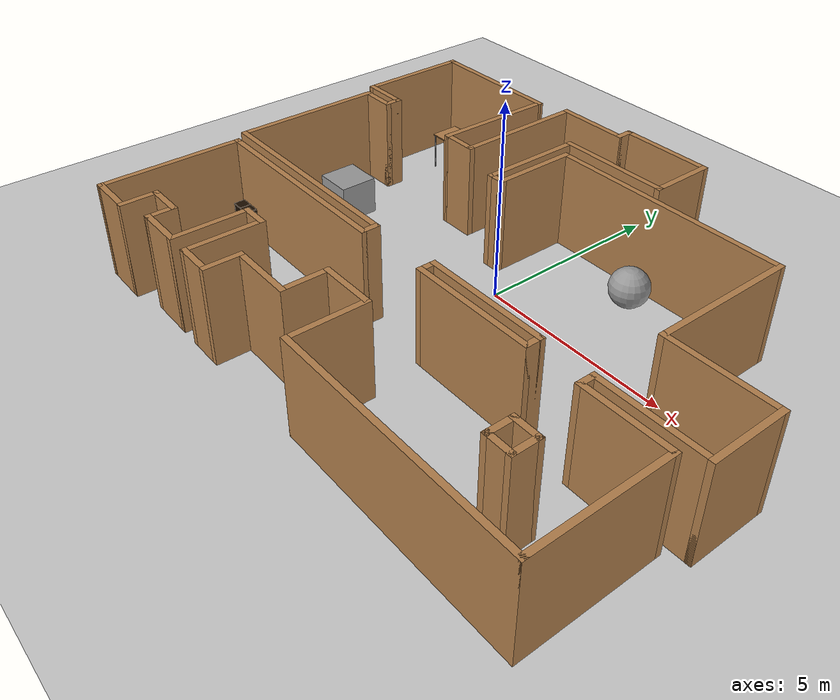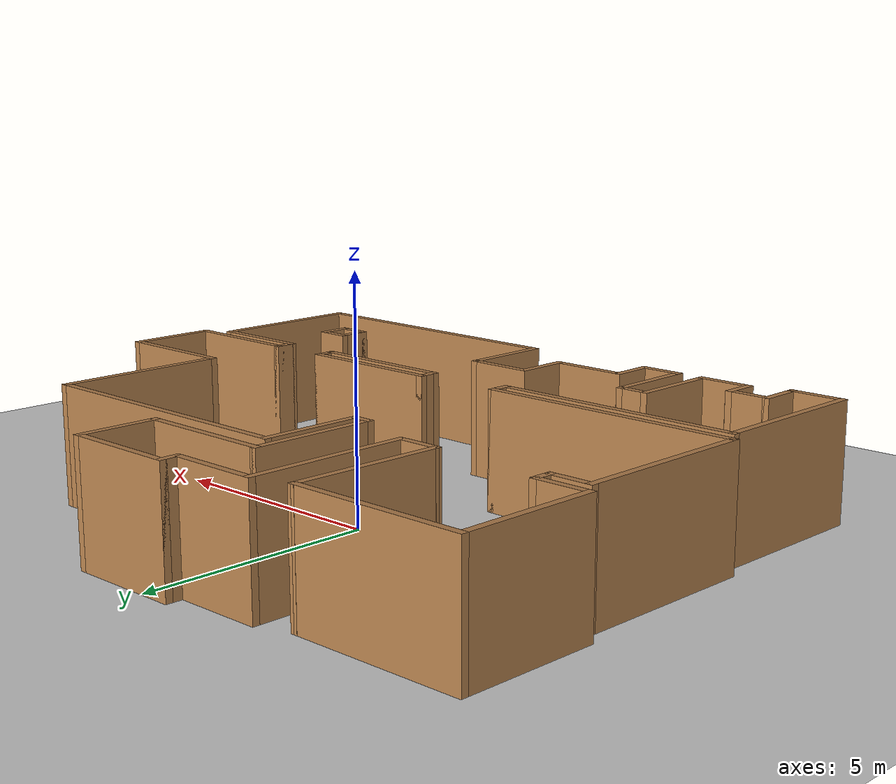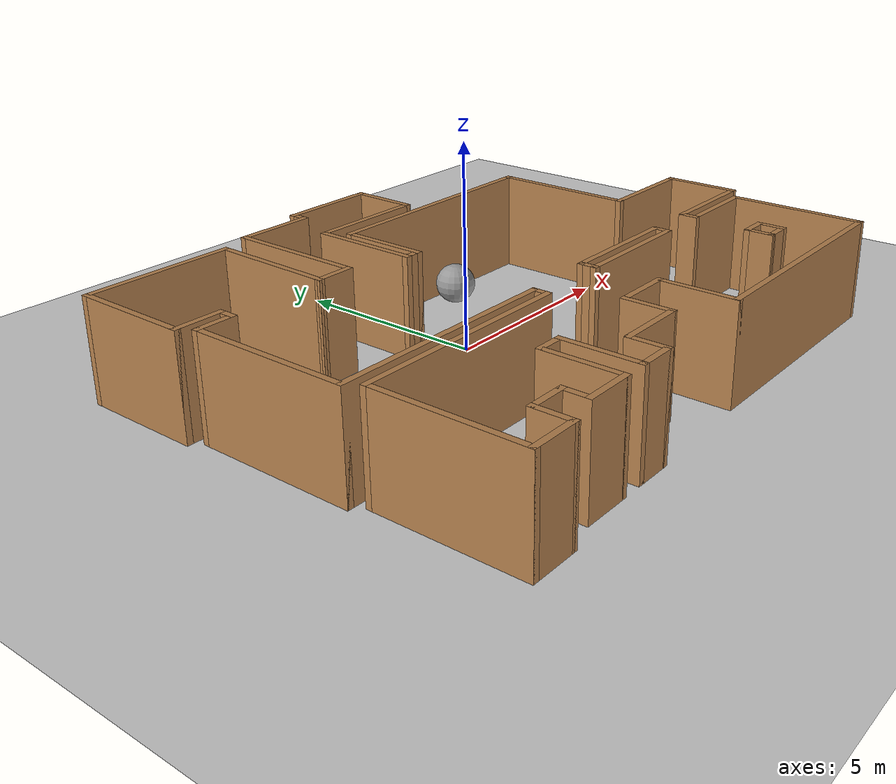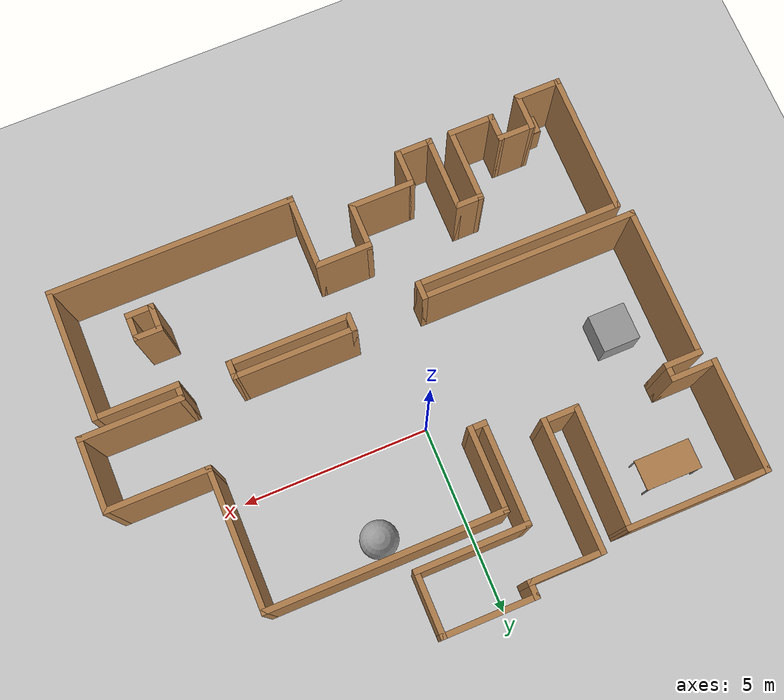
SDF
<sdf version="1.6">
 <world name="default">
  <light name="sun" type="directional">
   <pose>0 0 10 0 -0 0</pose>
   <diffuse>0.8 0.8 0.8 1</diffuse>
   <specular>0.2 0.2 0.2 1</specular>
   <attenuation>
    <range>1000</range>
    <constant>0.9</constant>
    <linear>0.01</linear>
    <quadratic>0.001</quadratic>
   </attenuation>
   <direction>-0.5 0.1 -0.9</direction>
  </light>
  <model name="ground_plane">
   <static>1</static>
   <link name="link">
    <collision name="collision">
     <geometry><plane><normal>0 0 1</normal><size>100 100</size></plane></geometry>
     <surface>
      <contact><collide_bitmask>65535</collide_bitmask></contact>
      <friction><ode><mu>100</mu><mu2>50</mu2></ode></friction>
     </surface>
    </collision>
    <visual name="visual">
     <cast_shadows>0</cast_shadows>
     <geometry><plane><normal>0 0 1</normal><size>100 100</size></plane></geometry>
     <material>
      <script><uri>file://media/materials/scripts/gazebo.material</uri><name>Gazebo/Grey</name></script>
     </material>
    </visual>
   </link>
  </model>
  <gravity>0 0 -9.8</gravity>
  <magnetic_field>6e-06 2.3e-05 -4.2e-05</magnetic_field>
  <atmosphere type="adiabatic"/>
  <physics name="default_physics" default="0" type="ode">
   <max_step_size>0.001</max_step_size>
   <real_time_factor>1</real_time_factor>
   <real_time_update_rate>1000</real_time_update_rate>
  </physics>
  <scene><ambient>0.4 0.4 0.4 1</ambient><background>0.7 0.7 0.7 1</background><shadows>1</shadows></scene>
  <audio><device>default</device></audio>
  <spherical_coordinates>
   <surface_model>EARTH_WGS84</surface_model>
   <latitude_deg>0</latitude_deg>
   <longitude_deg>0</longitude_deg>
   <elevation>0</elevation>
   <heading_deg>0</heading_deg>
  </spherical_coordinates>
  <model name="map_63">
   <pose>0.515719 -0.835824 0 0 -0 0</pose>
   <link name="Wall_0">
    <collision name="Wall_0_Collision">
     <geometry><box><size>3.75 0.15 2.5</size></box></geometry>
     <pose>0 0 1.25 0 -0 0</pose>
    </collision>
    <visual name="Wall_0_Visual">
     <pose>0 0 1.25 0 -0 0</pose>
     <geometry><box><size>3.75 0.15 2.5</size></box></geometry>
     <material>
      <script><uri>file://media/materials/scripts/gazebo.material</uri><name>Gazebo/Wood</name></script>
      <ambient>1 1 1 1</ambient>
     </material>
     <meta><layer>0</layer></meta>
    </visual>
    <pose>-5.6 5.2 0 0 -0 3.14159</pose>
   </link>
   <link name="Wall_1">
    <collision name="Wall_1_Collision">
     <geometry><box><size>3 0.15 2.5</size></box></geometry>
     <pose>0 0 1.25 0 -0 0</pose>
    </collision>
    <visual name="Wall_1_Visual">
     <pose>0 0 1.25 0 -0 0</pose>
     <geometry><box><size>3 0.15 2.5</size></box></geometry>
     <material>
      <script><uri>file://media/materials/scripts/gazebo.material</uri><name>Gazebo/Wood</name></script>
      <ambient>1 1 1 1</ambient>
     </material>
     <meta><layer>0</layer></meta>
    </visual>
    <pose>-7.4 3.775 0 0 -0 -1.5708</pose>
   </link>
   <link name="Wall_10">
    <collision name="Wall_10_Collision">
     <geometry><box><size>1.25 0.15 2.5</size></box></geometry>
     <pose>0 0 1.25 0 -0 0</pose>
    </collision>
    <visual name="Wall_10_Visual">
     <pose>0 0 1.25 0 -0 0</pose>
     <geometry><box><size>1.25 0.15 2.5</size></box></geometry>
     <material>
      <script><uri>file://media/materials/scripts/gazebo.material</uri><name>Gazebo/Wood</name></script>
      <ambient>1 1 1 1</ambient>
     </material>
     <meta><layer>0</layer></meta>
    </visual>
    <pose>-6.35 -5.8 0 0 -0 0</pose>
   </link>
   <link name="Wall_11">
    <collision name="Wall_11_Collision">
     <geometry><box><size>1 0.15 2.5</size></box></geometry>
     <pose>0 0 1.25 0 -0 0</pose>
    </collision>
    <visual name="Wall_11_Visual">
     <pose>0 0 1.25 0 -0 0</pose>
     <geometry><box><size>1 0.15 2.5</size></box></geometry>
     <material>
      <script><uri>file://media/materials/scripts/gazebo.material</uri><name>Gazebo/Wood</name></script>
      <ambient>1 1 1 1</ambient>
     </material>
     <meta><layer>0</layer></meta>
    </visual>
    <pose>-5.8 -5.375 0 0 -0 1.5708</pose>
   </link>
   <link name="Wall_12">
    <collision name="Wall_12_Collision">
     <geometry><box><size>1 0.15 2.5</size></box></geometry>
     <pose>0 0 1.25 0 -0 0</pose>
    </collision>
    <visual name="Wall_12_Visual">
     <pose>0 0 1.25 0 -0 0</pose>
     <geometry><box><size>1 0.15 2.5</size></box></geometry>
     <material>
      <script><uri>file://media/materials/scripts/gazebo.material</uri><name>Gazebo/Wood</name></script>
      <ambient>1 1 1 1</ambient>
     </material>
     <meta><layer>0</layer></meta>
    </visual>
    <pose>-5.375 -4.95 0 0 -0 0</pose>
   </link>
   <link name="Wall_13">
    <collision name="Wall_13_Collision">
     <geometry><box><size>0.75 0.15 2.5</size></box></geometry>
     <pose>0 0 1.25 0 -0 0</pose>
    </collision>
    <visual name="Wall_13_Visual">
     <pose>0 0 1.25 0 -0 0</pose>
     <geometry><box><size>0.75 0.15 2.5</size></box></geometry>
     <material>
      <script><uri>file://media/materials/scripts/gazebo.material</uri><name>Gazebo/Wood</name></script>
      <ambient>1 1 1 1</ambient>
     </material>
     <meta><layer>0</layer></meta>
    </visual>
    <pose>-4.95 -5.25 0 0 -0 -1.5708</pose>
   </link>
   <link name="Wall_14">
    <collision name="Wall_14_Collision">
     <geometry><box><size>1.25 0.15 2.5</size></box></geometry>
     <pose>0 0 1.25 0 -0 0</pose>
    </collision>
    <visual name="Wall_14_Visual">
     <pose>0 0 1.25 0 -0 0</pose>
     <geometry><box><size>1.25 0.15 2.5</size></box></geometry>
     <material>
      <script><uri>file://media/materials/scripts/gazebo.material</uri><name>Gazebo/Wood</name></script>
      <ambient>1 1 1 1</ambient>
     </material>
     <meta><layer>0</layer></meta>
    </visual>
    <pose>-4.4 -5.55 0 0 -0 0</pose>
   </link>
   <link name="Wall_15">
    <collision name="Wall_15_Collision">
     <geometry><box><size>2 0.15 2.5</size></box></geometry>
     <pose>0 0 1.25 0 -0 0</pose>
    </collision>
    <visual name="Wall_15_Visual">
     <pose>0 0 1.25 0 -0 0</pose>
     <geometry><box><size>2 0.15 2.5</size></box></geometry>
     <material>
      <script><uri>file://media/materials/scripts/gazebo.material</uri><name>Gazebo/Wood</name></script>
      <ambient>1 1 1 1</ambient>
     </material>
     <meta><layer>0</layer></meta>
    </visual>
    <pose>-3.85 -4.625 0 0 -0 1.5708</pose>
   </link>
   <link name="Wall_16">
    <collision name="Wall_16_Collision">
     <geometry><box><size>0.75 0.15 2.5</size></box></geometry>
     <pose>0 0 1.25 0 -0 0</pose>
    </collision>
    <visual name="Wall_16_Visual">
     <pose>0 0 1.25 0 -0 0</pose>
     <geometry><box><size>0.75 0.15 2.5</size></box></geometry>
     <material>
      <script><uri>file://media/materials/scripts/gazebo.material</uri><name>Gazebo/Wood</name></script>
      <ambient>1 1 1 1</ambient>
     </material>
     <meta><layer>0</layer></meta>
    </visual>
    <pose>-3.55 -3.7 0 0 -0 0</pose>
   </link>
   <link name="Wall_17">
    <collision name="Wall_17_Collision">
     <geometry><box><size>2 0.15 2.5</size></box></geometry>
     <pose>0 0 1.25 0 -0 0</pose>
    </collision>
    <visual name="Wall_17_Visual">
     <pose>0 0 1.25 0 -0 0</pose>
     <geometry><box><size>2 0.15 2.5</size></box></geometry>
     <material>
      <script><uri>file://media/materials/scripts/gazebo.material</uri><name>Gazebo/Wood</name></script>
      <ambient>1 1 1 1</ambient>
     </material>
     <meta><layer>0</layer></meta>
    </visual>
    <pose>-3.25 -4.625 0 0 -0 -1.5708</pose>
   </link>
   <link name="Wall_18">
    <collision name="Wall_18_Collision">
     <geometry><box><size>1 0.15 2.5</size></box></geometry>
     <pose>0 0 1.25 0 -0 0</pose>
    </collision>
    <visual name="Wall_18_Visual">
     <pose>0 0 1.25 0 -0 0</pose>
     <geometry><box><size>1 0.15 2.5</size></box></geometry>
     <material>
      <script><uri>file://media/materials/scripts/gazebo.material</uri><name>Gazebo/Wood</name></script>
      <ambient>1 1 1 1</ambient>
     </material>
     <meta><layer>0</layer></meta>
    </visual>
    <pose>-2.825 -5.55 0 0 -0 0</pose>
   </link>
   <link name="Wall_19">
    <collision name="Wall_19_Collision">
     <geometry><box><size>1 0.15 2.5</size></box></geometry>
     <pose>0 0 1.25 0 -0 0</pose>
    </collision>
    <visual name="Wall_19_Visual">
     <pose>0 0 1.25 0 -0 0</pose>
     <geometry><box><size>1 0.15 2.5</size></box></geometry>
     <material>
      <script><uri>file://media/materials/scripts/gazebo.material</uri><name>Gazebo/Wood</name></script>
      <ambient>1 1 1 1</ambient>
     </material>
     <meta><layer>0</layer></meta>
    </visual>
    <pose>-2.4 -5.125 0 0 -0 1.5708</pose>
   </link>
   <link name="Wall_2">
    <collision name="Wall_2_Collision">
     <geometry><box><size>1.25 0.15 2.5</size></box></geometry>
     <pose>0 0 1.25 0 -0 0</pose>
    </collision>
    <visual name="Wall_2_Visual">
     <pose>0 0 1.25 0 -0 0</pose>
     <geometry><box><size>1.25 0.15 2.5</size></box></geometry>
     <material>
      <script><uri>file://media/materials/scripts/gazebo.material</uri><name>Gazebo/Wood</name></script>
      <ambient>1 1 1 1</ambient>
     </material>
     <meta><layer>0</layer></meta>
    </visual>
    <pose>-6.85 2.35 0 0 -0 0</pose>
   </link>
   <link name="Wall_20">
    <collision name="Wall_20_Collision">
     <geometry><box><size>1.75 0.15 2.5</size></box></geometry>
     <pose>0 0 1.25 0 -0 0</pose>
    </collision>
    <visual name="Wall_20_Visual">
     <pose>0 0 1.25 0 -0 0</pose>
     <geometry><box><size>1.75 0.15 2.5</size></box></geometry>
     <material>
      <script><uri>file://media/materials/scripts/gazebo.material</uri><name>Gazebo/Wood</name></script>
      <ambient>1 1 1 1</ambient>
     </material>
     <meta><layer>0</layer></meta>
    </visual>
    <pose>-1.6 -4.7 0 0 -0 0</pose>
   </link>
   <link name="Wall_21">
    <collision name="Wall_21_Collision">
     <geometry><box><size>1.25 0.15 2.5</size></box></geometry>
     <pose>0 0 1.25 0 -0 0</pose>
    </collision>
    <visual name="Wall_21_Visual">
     <pose>0 0 1.25 0 -0 0</pose>
     <geometry><box><size>1.25 0.15 2.5</size></box></geometry>
     <material>
      <script><uri>file://media/materials/scripts/gazebo.material</uri><name>Gazebo/Wood</name></script>
      <ambient>1 1 1 1</ambient>
     </material>
     <meta><layer>0</layer></meta>
    </visual>
    <pose>-0.8 -4.15 0 0 -0 1.5708</pose>
   </link>
   <link name="Wall_22">
    <collision name="Wall_22_Collision">
     <geometry><box><size>1.5 0.15 2.5</size></box></geometry>
     <pose>0 0 1.25 0 -0 0</pose>
    </collision>
    <visual name="Wall_22_Visual">
     <pose>0 0 1.25 0 -0 0</pose>
     <geometry><box><size>1.5 0.15 2.5</size></box></geometry>
     <material>
      <script><uri>file://media/materials/scripts/gazebo.material</uri><name>Gazebo/Wood</name></script>
      <ambient>1 1 1 1</ambient>
     </material>
     <meta><layer>0</layer></meta>
    </visual>
    <pose>-0.125 -3.6 0 0 -0 0</pose>
   </link>
   <link name="Wall_23">
    <collision name="Wall_23_Collision">
     <geometry><box><size>2 0.15 2.5</size></box></geometry>
     <pose>0 0 1.25 0 -0 0</pose>
    </collision>
    <visual name="Wall_23_Visual">
     <pose>0 0 1.25 0 -0 0</pose>
     <geometry><box><size>2 0.15 2.5</size></box></geometry>
     <material>
      <script><uri>file://media/materials/scripts/gazebo.material</uri><name>Gazebo/Wood</name></script>
      <ambient>1 1 1 1</ambient>
     </material>
     <meta><layer>0</layer></meta>
    </visual>
    <pose>0.55 -4.525 0 0 -0 -1.5708</pose>
   </link>
   <link name="Wall_24">
    <collision name="Wall_24_Collision">
     <geometry><box><size>6.5 0.15 2.5</size></box></geometry>
     <pose>0 0 1.25 0 -0 0</pose>
    </collision>
    <visual name="Wall_24_Visual">
     <pose>0 0 1.25 0 -0 0</pose>
     <geometry><box><size>6.5 0.15 2.5</size></box></geometry>
     <material>
      <script><uri>file://media/materials/scripts/gazebo.material</uri><name>Gazebo/Wood</name></script>
      <ambient>1 1 1 1</ambient>
     </material>
     <meta><layer>0</layer></meta>
    </visual>
    <pose>3.725 -5.45 0 0 -0 0</pose>
   </link>
   <link name="Wall_25">
    <collision name="Wall_25_Collision">
     <geometry><box><size>3.5 0.15 2.5</size></box></geometry>
     <pose>0 0 1.25 0 -0 0</pose>
    </collision>
    <visual name="Wall_25_Visual">
     <pose>0 0 1.25 0 -0 0</pose>
     <geometry><box><size>3.5 0.15 2.5</size></box></geometry>
     <material>
      <script><uri>file://media/materials/scripts/gazebo.material</uri><name>Gazebo/Wood</name></script>
      <ambient>1 1 1 1</ambient>
     </material>
     <meta><layer>0</layer></meta>
    </visual>
    <pose>6.9 -3.775 0 0 -0 1.5708</pose>
   </link>
   <link name="Wall_26">
    <collision name="Wall_26_Collision">
     <geometry><box><size>2.25 0.15 2.5</size></box></geometry>
     <pose>0 0 1.25 0 -0 0</pose>
    </collision>
    <visual name="Wall_26_Visual">
     <pose>0 0 1.25 0 -0 0</pose>
     <geometry><box><size>2.25 0.15 2.5</size></box></geometry>
     <material>
      <script><uri>file://media/materials/scripts/gazebo.material</uri><name>Gazebo/Wood</name></script>
      <ambient>1 1 1 1</ambient>
     </material>
     <meta><layer>0</layer></meta>
    </visual>
    <pose>5.85 -2.1 0 0 -0 3.14159</pose>
   </link>
   <link name="Wall_27">
    <collision name="Wall_27_Collision">
     <geometry><box><size>0.5 0.15 2.5</size></box></geometry>
     <pose>0 0 1.25 0 -0 0</pose>
    </collision>
    <visual name="Wall_27_Visual">
     <pose>0 0 1.25 0 -0 0</pose>
     <geometry><box><size>0.5 0.15 2.5</size></box></geometry>
     <material>
      <script><uri>file://media/materials/scripts/gazebo.material</uri><name>Gazebo/Wood</name></script>
      <ambient>1 1 1 1</ambient>
     </material>
     <meta><layer>0</layer></meta>
    </visual>
    <pose>4.8 -1.925 0 0 -0 1.5708</pose>
   </link>
   <link name="Wall_28">
    <collision name="Wall_28_Collision">
     <geometry><box><size>2.75 0.15 2.5</size></box></geometry>
     <pose>0 0 1.25 0 -0 0</pose>
    </collision>
    <visual name="Wall_28_Visual">
     <pose>0 0 1.25 0 -0 0</pose>
     <geometry><box><size>2.75 0.15 2.5</size></box></geometry>
     <material>
      <script><uri>file://media/materials/scripts/gazebo.material</uri><name>Gazebo/Wood</name></script>
      <ambient>1 1 1 1</ambient>
     </material>
     <meta><layer>0</layer></meta>
    </visual>
    <pose>6.1 -1.75 0 0 -0 0</pose>
   </link>
   <link name="Wall_29">
    <collision name="Wall_29_Collision">
     <geometry><box><size>2 0.15 2.5</size></box></geometry>
     <pose>0 0 1.25 0 -0 0</pose>
    </collision>
    <visual name="Wall_29_Visual">
     <pose>0 0 1.25 0 -0 0</pose>
     <geometry><box><size>2 0.15 2.5</size></box></geometry>
     <material>
      <script><uri>file://media/materials/scripts/gazebo.material</uri><name>Gazebo/Wood</name></script>
      <ambient>1 1 1 1</ambient>
     </material>
     <meta><layer>0</layer></meta>
    </visual>
    <pose>7.4 -0.825 0 0 -0 1.5708</pose>
   </link>
   <link name="Wall_3">
    <collision name="Wall_3_Collision">
     <geometry><box><size>0.5 0.15 2.5</size></box></geometry>
     <pose>0 0 1.25 0 -0 0</pose>
    </collision>
    <visual name="Wall_3_Visual">
     <pose>0 0 1.25 0 -0 0</pose>
     <geometry><box><size>0.5 0.15 2.5</size></box></geometry>
     <material>
      <script><uri>file://media/materials/scripts/gazebo.material</uri><name>Gazebo/Wood</name></script>
      <ambient>1 1 1 1</ambient>
     </material>
     <meta><layer>0</layer></meta>
    </visual>
    <pose>-6.3 2.175 0 0 -0 -1.5708</pose>
   </link>
   <link name="Wall_30">
    <collision name="Wall_30_Collision">
     <geometry><box><size>2.75 0.15 2.5</size></box></geometry>
     <pose>0 0 1.25 0 -0 0</pose>
    </collision>
    <visual name="Wall_30_Visual">
     <pose>0 0 1.25 0 -0 0</pose>
     <geometry><box><size>2.75 0.15 2.5</size></box></geometry>
     <material>
      <script><uri>file://media/materials/scripts/gazebo.material</uri><name>Gazebo/Wood</name></script>
      <ambient>1 1 1 1</ambient>
     </material>
     <meta><layer>0</layer></meta>
    </visual>
    <pose>6.1 0.1 0 0 -0 3.14159</pose>
   </link>
   <link name="Wall_31">
    <collision name="Wall_31_Collision">
     <geometry><box><size>3.75 0.15 2.5</size></box></geometry>
     <pose>0 0 1.25 0 -0 0</pose>
    </collision>
    <visual name="Wall_31_Visual">
     <pose>0 0 1.25 0 -0 0</pose>
     <geometry><box><size>3.75 0.15 2.5</size></box></geometry>
     <material>
      <script><uri>file://media/materials/scripts/gazebo.material</uri><name>Gazebo/Wood</name></script>
      <ambient>1 1 1 1</ambient>
     </material>
     <meta><layer>0</layer></meta>
    </visual>
    <pose>4.8 1.9 0 0 -0 1.5708</pose>
   </link>
   <link name="Wall_32">
    <collision name="Wall_32_Collision">
     <geometry><box><size>6.25 0.15 2.5</size></box></geometry>
     <pose>0 0 1.25 0 -0 0</pose>
    </collision>
    <visual name="Wall_32_Visual">
     <pose>0 0 1.25 0 -0 0</pose>
     <geometry><box><size>6.25 0.15 2.5</size></box></geometry>
     <material>
      <script><uri>file://media/materials/scripts/gazebo.material</uri><name>Gazebo/Wood</name></script>
      <ambient>1 1 1 1</ambient>
     </material>
     <meta><layer>0</layer></meta>
    </visual>
    <pose>1.75 3.7 0 0 -0 3.14159</pose>
   </link>
   <link name="Wall_33">
    <collision name="Wall_33_Collision">
     <geometry><box><size>2.25 0.15 2.5</size></box></geometry>
     <pose>0 0 1.25 0 -0 0</pose>
    </collision>
    <visual name="Wall_33_Visual">
     <pose>0 0 1.25 0 -0 0</pose>
     <geometry><box><size>2.25 0.15 2.5</size></box></geometry>
     <material>
      <script><uri>file://media/materials/scripts/gazebo.material</uri><name>Gazebo/Wood</name></script>
      <ambient>1 1 1 1</ambient>
     </material>
     <meta><layer>0</layer></meta>
    </visual>
    <pose>-1.3 2.65 0 0 -0 -1.5708</pose>
   </link>
   <link name="Wall_34">
    <collision name="Wall_34_Collision">
     <geometry><box><size>0.5 0.15 2.5</size></box></geometry>
     <pose>0 0 1.25 0 -0 0</pose>
    </collision>
    <visual name="Wall_34_Visual">
     <pose>0 0 1.25 0 -0 0</pose>
     <geometry><box><size>0.5 0.15 2.5</size></box></geometry>
     <material>
      <script><uri>file://media/materials/scripts/gazebo.material</uri><name>Gazebo/Wood</name></script>
      <ambient>1 1 1 1</ambient>
     </material>
     <meta><layer>0</layer></meta>
    </visual>
    <pose>-1.475 1.6 0 0 -0 3.14159</pose>
   </link>
   <link name="Wall_35">
    <collision name="Wall_35_Collision">
     <geometry><box><size>2.75 0.15 2.5</size></box></geometry>
     <pose>0 0 1.25 0 -0 0</pose>
    </collision>
    <visual name="Wall_35_Visual">
     <pose>0 0 1.25 0 -0 0</pose>
     <geometry><box><size>2.75 0.15 2.5</size></box></geometry>
     <material>
      <script><uri>file://media/materials/scripts/gazebo.material</uri><name>Gazebo/Wood</name></script>
      <ambient>1 1 1 1</ambient>
     </material>
     <meta><layer>0</layer></meta>
    </visual>
    <pose>-1.65 2.9 0 0 -0 1.5708</pose>
   </link>
   <link name="Wall_36">
    <collision name="Wall_36_Collision">
     <geometry><box><size>3 0.15 2.5</size></box></geometry>
     <pose>0 0 1.25 0 -0 0</pose>
    </collision>
    <visual name="Wall_36_Visual">
     <pose>0 0 1.25 0 -0 0</pose>
     <geometry><box><size>3 0.15 2.5</size></box></geometry>
     <material>
      <script><uri>file://media/materials/scripts/gazebo.material</uri><name>Gazebo/Wood</name></script>
      <ambient>1 1 1 1</ambient>
     </material>
     <meta><layer>0</layer></meta>
    </visual>
    <pose>-0.225 4.2 0 0 -0 0</pose>
   </link>
   <link name="Wall_37">
    <collision name="Wall_37_Collision">
     <geometry><box><size>1.75 0.15 2.5</size></box></geometry>
     <pose>0 0 1.25 0 -0 0</pose>
    </collision>
    <visual name="Wall_37_Visual">
     <pose>0 0 1.25 0 -0 0</pose>
     <geometry><box><size>1.75 0.15 2.5</size></box></geometry>
     <material>
      <script><uri>file://media/materials/scripts/gazebo.material</uri><name>Gazebo/Wood</name></script>
      <ambient>1 1 1 1</ambient>
     </material>
     <meta><layer>0</layer></meta>
    </visual>
    <pose>1.2 5 0 0 -0 1.5708</pose>
   </link>
   <link name="Wall_38">
    <collision name="Wall_38_Collision">
     <geometry><box><size>2.5 0.15 2.5</size></box></geometry>
     <pose>0 0 1.25 0 -0 0</pose>
    </collision>
    <visual name="Wall_38_Visual">
     <pose>0 0 1.25 0 -0 0</pose>
     <geometry><box><size>2.5 0.15 2.5</size></box></geometry>
     <material>
      <script><uri>file://media/materials/scripts/gazebo.material</uri><name>Gazebo/Wood</name></script>
      <ambient>1 1 1 1</ambient>
     </material>
     <meta><layer>0</layer></meta>
    </visual>
    <pose>0.025 5.8 0 0 -0 3.14159</pose>
   </link>
   <link name="Wall_39">
    <collision name="Wall_39_Collision">
     <geometry><box><size>0.5 0.15 2.5</size></box></geometry>
     <pose>0 0 1.25 0 -0 0</pose>
    </collision>
    <visual name="Wall_39_Visual">
     <pose>0 0 1.25 0 -0 0</pose>
     <geometry><box><size>0.5 0.15 2.5</size></box></geometry>
     <material>
      <script><uri>file://media/materials/scripts/gazebo.material</uri><name>Gazebo/Wood</name></script>
      <ambient>1 1 1 1</ambient>
     </material>
     <meta><layer>0</layer></meta>
    </visual>
    <pose>-1.15 5.625 0 0 -0 -1.5708</pose>
   </link>
   <link name="Wall_4">
    <collision name="Wall_4_Collision">
     <geometry><box><size>1 0.15 2.5</size></box></geometry>
     <pose>0 0 1.25 0 -0 0</pose>
    </collision>
    <visual name="Wall_4_Visual">
     <pose>0 0 1.25 0 -0 0</pose>
     <geometry><box><size>1 0.15 2.5</size></box></geometry>
     <material>
      <script><uri>file://media/materials/scripts/gazebo.material</uri><name>Gazebo/Wood</name></script>
      <ambient>1 1 1 1</ambient>
     </material>
     <meta><layer>0</layer></meta>
    </visual>
    <pose>-6.725 2 0 0 -0 3.14159</pose>
   </link>
   <link name="Wall_40">
    <collision name="Wall_40_Collision">
     <geometry><box><size>2 0.15 2.5</size></box></geometry>
     <pose>0 0 1.25 0 -0 0</pose>
    </collision>
    <visual name="Wall_40_Visual">
     <pose>0 0 1.25 0 -0 0</pose>
     <geometry><box><size>2 0.15 2.5</size></box></geometry>
     <material>
      <script><uri>file://media/materials/scripts/gazebo.material</uri><name>Gazebo/Wood</name></script>
      <ambient>1 1 1 1</ambient>
     </material>
     <meta><layer>0</layer></meta>
    </visual>
    <pose>-2.075 5.45 0 0 -0 3.14159</pose>
   </link>
   <link name="Wall_41">
    <collision name="Wall_41_Collision">
     <geometry><box><size>3.5 0.15 2.5</size></box></geometry>
     <pose>0 0 1.25 0 -0 0</pose>
    </collision>
    <visual name="Wall_41_Visual">
     <pose>0 0 1.25 0 -0 0</pose>
     <geometry><box><size>3.5 0.15 2.5</size></box></geometry>
     <material>
      <script><uri>file://media/materials/scripts/gazebo.material</uri><name>Gazebo/Wood</name></script>
      <ambient>1 1 1 1</ambient>
     </material>
     <meta><layer>0</layer></meta>
    </visual>
    <pose>-3 3.775 0 0 -0 -1.5708</pose>
   </link>
   <link name="Wall_42">
    <collision name="Wall_42_Collision">
     <geometry><box><size>1 0.15 2.5</size></box></geometry>
     <pose>0 0 1.25 0 -0 0</pose>
    </collision>
    <visual name="Wall_42_Visual">
     <pose>0 0 1.25 0 -0 0</pose>
     <geometry><box><size>1 0.15 2.5</size></box></geometry>
     <material>
      <script><uri>file://media/materials/scripts/gazebo.material</uri><name>Gazebo/Wood</name></script>
      <ambient>1 1 1 1</ambient>
     </material>
     <meta><layer>0</layer></meta>
    </visual>
    <pose>-3.425 2.1 0 0 -0 3.14159</pose>
   </link>
   <link name="Wall_43">
    <collision name="Wall_43_Collision">
     <geometry><box><size>3.2504 0.15 2.5</size></box></geometry>
     <pose>0 0 1.25 0 -0 0</pose>
    </collision>
    <visual name="Wall_43_Visual">
     <pose>0 0 1.25 0 -0 0</pose>
     <geometry><box><size>3.2504 0.15 2.5</size></box></geometry>
     <material>
      <script><uri>file://media/materials/scripts/gazebo.material</uri><name>Gazebo/Wood</name></script>
      <ambient>1 1 1 1</ambient>
     </material>
     <meta><layer>0</layer></meta>
    </visual>
    <pose>-3.825 3.65 0 0 -0 1.55467</pose>
   </link>
   <link name="Wall_46">
    <collision name="Wall_46_Collision">
     <geometry><box><size>3.25 0.15 2.5</size></box></geometry>
     <pose>0 0 1.25 0 -0 0</pose>
    </collision>
    <visual name="Wall_46_Visual">
     <pose>0 0 1.25 0 -0 0</pose>
     <geometry><box><size>3.25 0.15 2.5</size></box></geometry>
     <material>
      <script><uri>file://media/materials/scripts/gazebo.material</uri><name>Gazebo/Wood</name></script>
      <ambient>1 1 1 1</ambient>
     </material>
     <meta><layer>0</layer></meta>
    </visual>
    <pose>1.89939 -2.10794 0 0 -0 3.14159</pose>
   </link>
   <link name="Wall_47">
    <collision name="Wall_47_Collision">
     <geometry><box><size>0.5 0.15 2.5</size></box></geometry>
     <pose>0 0 1.25 0 -0 0</pose>
    </collision>
    <visual name="Wall_47_Visual">
     <pose>0 0 1.25 0 -0 0</pose>
     <geometry><box><size>0.5 0.15 2.5</size></box></geometry>
     <material>
      <script><uri>file://media/materials/scripts/gazebo.material</uri><name>Gazebo/Wood</name></script>
      <ambient>1 1 1 1</ambient>
     </material>
     <meta><layer>0</layer></meta>
    </visual>
    <pose>0.349392 -1.93294 0 0 -0 1.5708</pose>
   </link>
   <link name="Wall_48">
    <collision name="Wall_48_Collision">
     <geometry><box><size>3.25 0.15 2.5</size></box></geometry>
     <pose>0 0 1.25 0 -0 0</pose>
    </collision>
    <visual name="Wall_48_Visual">
     <pose>0 0 1.25 0 -0 0</pose>
     <geometry><box><size>3.25 0.15 2.5</size></box></geometry>
     <material>
      <script><uri>file://media/materials/scripts/gazebo.material</uri><name>Gazebo/Wood</name></script>
      <ambient>1 1 1 1</ambient>
     </material>
     <meta><layer>0</layer></meta>
    </visual>
    <pose>1.89939 -1.75794 0 0 -0 0</pose>
   </link>
   <link name="Wall_49">
    <collision name="Wall_49_Collision">
     <geometry><box><size>0.5 0.15 2.5</size></box></geometry>
     <pose>0 0 1.25 0 -0 0</pose>
    </collision>
    <visual name="Wall_49_Visual">
     <pose>0 0 1.25 0 -0 0</pose>
     <geometry><box><size>0.5 0.15 2.5</size></box></geometry>
     <material>
      <script><uri>file://media/materials/scripts/gazebo.material</uri><name>Gazebo/Wood</name></script>
      <ambient>1 1 1 1</ambient>
     </material>
     <meta><layer>0</layer></meta>
    </visual>
    <pose>3.44939 -1.93294 0 0 -0 -1.5708</pose>
   </link>
   <link name="Wall_5">
    <collision name="Wall_5_Collision">
     <geometry><box><size>4 0.15 2.5</size></box></geometry>
     <pose>0 0 1.25 0 -0 0</pose>
    </collision>
    <visual name="Wall_5_Visual">
     <pose>0 0 1.25 0 -0 0</pose>
     <geometry><box><size>4 0.15 2.5</size></box></geometry>
     <material>
      <script><uri>file://media/materials/scripts/gazebo.material</uri><name>Gazebo/Wood</name></script>
      <ambient>1 1 1 1</ambient>
     </material>
     <meta><layer>0</layer></meta>
    </visual>
    <pose>-7.15 0.075 0 0 -0 -1.5708</pose>
   </link>
   <link name="Wall_51">
    <collision name="Wall_51_Collision">
     <geometry><box><size>0.75 0.15 2.5</size></box></geometry>
     <pose>0 0 1.25 0 -0 0</pose>
    </collision>
    <visual name="Wall_51_Visual">
     <pose>0 0 1.25 0 -0 0</pose>
     <geometry><box><size>0.75 0.15 2.5</size></box></geometry>
     <material>
      <script><uri>file://media/materials/scripts/gazebo.material</uri><name>Gazebo/Wood</name></script>
      <ambient>1 1 1 1</ambient>
     </material>
     <meta><layer>0</layer></meta>
    </visual>
    <pose>4.70359 -3.87628 0 0 -0 -1.5708</pose>
   </link>
   <link name="Wall_52">
    <collision name="Wall_52_Collision">
     <geometry><box><size>0.75 0.15 2.5</size></box></geometry>
     <pose>0 0 1.25 0 -0 0</pose>
    </collision>
    <visual name="Wall_52_Visual">
     <pose>0 0 1.25 0 -0 0</pose>
     <geometry><box><size>0.75 0.15 2.5</size></box></geometry>
     <material>
      <script><uri>file://media/materials/scripts/gazebo.material</uri><name>Gazebo/Wood</name></script>
      <ambient>1 1 1 1</ambient>
     </material>
     <meta><layer>0</layer></meta>
    </visual>
    <pose>5.00359 -4.17628 0 0 -0 0</pose>
   </link>
   <link name="Wall_53">
    <collision name="Wall_53_Collision">
     <geometry><box><size>0.75 0.15 2.5</size></box></geometry>
     <pose>0 0 1.25 0 -0 0</pose>
    </collision>
    <visual name="Wall_53_Visual">
     <pose>0 0 1.25 0 -0 0</pose>
     <geometry><box><size>0.75 0.15 2.5</size></box></geometry>
     <material>
      <script><uri>file://media/materials/scripts/gazebo.material</uri><name>Gazebo/Wood</name></script>
      <ambient>1 1 1 1</ambient>
     </material>
     <meta><layer>0</layer></meta>
    </visual>
    <pose>5.30359 -3.87628 0 0 -0 1.5708</pose>
   </link>
   <link name="Wall_54">
    <collision name="Wall_54_Collision">
     <geometry><box><size>0.75 0.15 2.5</size></box></geometry>
     <pose>0 0 1.25 0 -0 0</pose>
    </collision>
    <visual name="Wall_54_Visual">
     <pose>0 0 1.25 0 -0 0</pose>
     <geometry><box><size>0.75 0.15 2.5</size></box></geometry>
     <material>
      <script><uri>file://media/materials/scripts/gazebo.material</uri><name>Gazebo/Wood</name></script>
      <ambient>1 1 1 1</ambient>
     </material>
     <meta><layer>0</layer></meta>
    </visual>
    <pose>5.00359 -3.57627 0 0 -0 3.14159</pose>
   </link>
   <link name="Wall_6">
    <collision name="Wall_6_Collision">
     <geometry><box><size>5.75 0.15 2.5</size></box></geometry>
     <pose>0 0 1.25 0 -0 0</pose>
    </collision>
    <visual name="Wall_6_Visual">
     <pose>0 0 1.25 0 -0 0</pose>
     <geometry><box><size>5.75 0.15 2.5</size></box></geometry>
     <material>
      <script><uri>file://media/materials/scripts/gazebo.material</uri><name>Gazebo/Wood</name></script>
      <ambient>1 1 1 1</ambient>
     </material>
     <meta><layer>0</layer></meta>
    </visual>
    <pose>-4.35 -1.85 0 0 -0 0</pose>
   </link>
   <link name="Wall_7">
    <collision name="Wall_7_Collision">
     <geometry><box><size>0.5 0.15 2.5</size></box></geometry>
     <pose>0 0 1.25 0 -0 0</pose>
    </collision>
    <visual name="Wall_7_Visual">
     <pose>0 0 1.25 0 -0 0</pose>
     <geometry><box><size>0.5 0.15 2.5</size></box></geometry>
     <material>
      <script><uri>file://media/materials/scripts/gazebo.material</uri><name>Gazebo/Wood</name></script>
      <ambient>1 1 1 1</ambient>
     </material>
     <meta><layer>0</layer></meta>
    </visual>
    <pose>-1.55 -2.025 0 0 -0 -1.5708</pose>
   </link>
   <link name="Wall_8">
    <collision name="Wall_8_Collision">
     <geometry><box><size>5.5 0.15 2.5</size></box></geometry>
     <pose>0 0 1.25 0 -0 0</pose>
    </collision>
    <visual name="Wall_8_Visual">
     <pose>0 0 1.25 0 -0 0</pose>
     <geometry><box><size>5.5 0.15 2.5</size></box></geometry>
     <material>
      <script><uri>file://media/materials/scripts/gazebo.material</uri><name>Gazebo/Wood</name></script>
      <ambient>1 1 1 1</ambient>
     </material>
     <meta><layer>0</layer></meta>
    </visual>
    <pose>-4.225 -2.2 0 0 -0 3.14159</pose>
   </link>
   <link name="Wall_9">
    <collision name="Wall_9_Collision">
     <geometry><box><size>3.75 0.15 2.5</size></box></geometry>
     <pose>0 0 1.25 0 -0 0</pose>
    </collision>
    <visual name="Wall_9_Visual">
     <pose>0 0 1.25 0 -0 0</pose>
     <geometry><box><size>3.75 0.15 2.5</size></box></geometry>
     <material>
      <script><uri>file://media/materials/scripts/gazebo.material</uri><name>Gazebo/Wood</name></script>
      <ambient>1 1 1 1</ambient>
     </material>
     <meta><layer>0</layer></meta>
    </visual>
    <pose>-6.9 -4 0 0 -0 -1.5708</pose>
   </link>
   <static>1</static>
  </model>
  <model name="table">
   <static>1</static>
   <link name="link">
    <collision name="surface">
     <pose>0 0 1 0 -0 0</pose>
     <geometry><box><size>1.5 0.8 0.03</size></box></geometry>
     <surface><friction><ode><mu>0.6</mu><mu2>0.6</mu2></ode></friction></surface>
    </collision>
    <visual name="visual1">
     <pose>0 0 1 0 -0 0</pose>
     <geometry><box><size>1.5 0.8 0.03</size></box></geometry>
     <material>
      <script><uri>file://media/materials/scripts/gazebo.material</uri><name>Gazebo/Wood</name></script>
     </material>
    </visual>
    <collision name="front_left_leg">
     <pose>0.68 0.38 0.5 0 -0 0</pose>
     <geometry><cylinder><radius>0.02</radius><length>1</length></cylinder></geometry>
    </collision>
    <visual name="front_left_leg">
     <pose>0.68 0.38 0.5 0 -0 0</pose>
     <geometry><cylinder><radius>0.02</radius><length>1</length></cylinder></geometry>
     <material>
      <script><uri>file://media/materials/scripts/gazebo.material</uri><name>Gazebo/Grey</name></script>
     </material>
    </visual>
    <collision name="front_right_leg">
     <pose>0.68 -0.38 0.5 0 -0 0</pose>
     <geometry><cylinder><radius>0.02</radius><length>1</length></cylinder></geometry>
    </collision>
    <visual name="front_right_leg">
     <pose>0.68 -0.38 0.5 0 -0 0</pose>
     <geometry><cylinder><radius>0.02</radius><length>1</length></cylinder></geometry>
     <material>
      <script><uri>file://media/materials/scripts/gazebo.material</uri><name>Gazebo/Grey</name></script>
     </material>
    </visual>
    <collision name="back_right_leg">
     <pose>-0.68 -0.38 0.5 0 -0 0</pose>
     <geometry><cylinder><radius>0.02</radius><length>1</length></cylinder></geometry>
    </collision>
    <visual name="back_right_leg">
     <pose>-0.68 -0.38 0.5 0 -0 0</pose>
     <geometry><cylinder><radius>0.02</radius><length>1</length></cylinder></geometry>
     <material>
      <script><uri>file://media/materials/scripts/gazebo.material</uri><name>Gazebo/Grey</name></script>
     </material>
    </visual>
    <collision name="back_left_leg">
     <pose>-0.68 0.38 0.5 0 -0 0</pose>
     <geometry><cylinder><radius>0.02</radius><length>1</length></cylinder></geometry>
    </collision>
    <visual name="back_left_leg">
     <pose>-0.68 0.38 0.5 0 -0 0</pose>
     <geometry><cylinder><radius>0.02</radius><length>1</length></cylinder></geometry>
     <material>
      <script><uri>file://media/materials/scripts/gazebo.material</uri><name>Gazebo/Grey</name></script>
     </material>
    </visual>
   </link>
   <pose>-5.13884 3.26472 0 0 -0 0</pose>
  </model>
  <model name="cabinet">
   <static>1</static>
   <link name="cabinet_bottom_plate">
    <inertial>
     <pose>0 0 -1 0 -0 0</pose>
     <inertia><ixx>2.05</ixx><ixy>0</ixy><ixz>0</ixz><iyy>2.05</iyy><iyz>0</iyz><izz>2.05</izz></inertia>
     <mass>25</mass>
    </inertial>
    <collision name="cabinet_bottom_plate_geom">
     <pose>0 0 0.01 0 -0 0</pose>
     <geometry><box><size>0.45 0.45 0.02</size></box></geometry>
    </collision>
    <visual name="cabinet_bottom_plate_geom_visual">
     <pose>0 0 0.01 0 -0 0</pose>
     <geometry><box><size>0.45 0.45 0.02</size></box></geometry>
     <material>
      <script><uri>file://media/materials/scripts/gazebo.material</uri><name>Gazebo/Wood</name></script>
     </material>
    </visual>
    <collision name="cabinet_bottom_plate_geom_cabinet_back_plate">
     <pose>0.235 0 0.51 0 -0 0</pose>
     <geometry><box><size>0.02 0.45 1.02</size></box></geometry>
    </collision>
    <visual name="cabinet_bottom_plate_geom_cabinet_back_plate_visual">
     <pose>0.235 0 0.51 0 -0 0</pose>
     <geometry><box><size>0.02 0.45 1.02</size></box></geometry>
     <material>
      <script><uri>file://media/materials/scripts/gazebo.material</uri><name>Gazebo/Wood</name></script>
     </material>
    </visual>
    <collision name="cabinet_bottom_plate_geom_cabinet_left_plate">
     <pose>0 0.235 0.51 0 -0 0</pose>
     <geometry><box><size>0.45 0.02 1.02</size></box></geometry>
    </collision>
    <visual name="cabinet_bottom_plate_geom_cabinet_left_plate_visual">
     <pose>0 0.235 0.51 0 -0 0</pose>
     <geometry><box><size>0.45 0.02 1.02</size></box></geometry>
     <material>
      <script><uri>file://media/materials/scripts/gazebo.material</uri><name>Gazebo/Wood</name></script>
     </material>
    </visual>
    <collision name="cabinet_bottom_plate_geom_cabinet_middle_plate">
     <pose>0 0 0.51 0 -0 0</pose>
     <geometry><box><size>0.45 0.45 0.02</size></box></geometry>
    </collision>
    <visual name="cabinet_bottom_plate_geom_cabinet_middle_plate_visual">
     <pose>0 0 0.51 0 -0 0</pose>
     <geometry><box><size>0.45 0.45 0.02</size></box></geometry>
     <material>
      <script><uri>file://media/materials/scripts/gazebo.material</uri><name>Gazebo/Wood</name></script>
     </material>
    </visual>
    <collision name="cabinet_bottom_plate_geom_cabinet_right_plate">
     <pose>0 -0.235 0.51 0 -0 0</pose>
     <geometry><box><size>0.45 0.02 1.02</size></box></geometry>
    </collision>
    <visual name="cabinet_bottom_plate_geom_cabinet_right_plate_visual">
     <pose>0 -0.235 0.51 0 -0 0</pose>
     <geometry><box><size>0.45 0.02 1.02</size></box></geometry>
     <material>
      <script><uri>file://media/materials/scripts/gazebo.material</uri><name>Gazebo/Wood</name></script>
     </material>
    </visual>
    <collision name="cabinet_bottom_plate_geom_cabinet_top_plate">
     <pose>0 0 1.01 0 -0 0</pose>
     <geometry><box><size>0.45 0.45 0.02</size></box></geometry>
    </collision>
    <visual name="cabinet_bottom_plate_geom_cabinet_top_plate_visual">
     <pose>0 0 1.01 0 -0 0</pose>
     <geometry><box><size>0.45 0.45 0.02</size></box></geometry>
     <material>
      <script><uri>file://media/materials/scripts/gazebo.material</uri><name>Gazebo/Wood</name></script>
     </material>
    </visual>
   </link>
   <pose>-5.62467 -6.3248 0 0 -0 0</pose>
  </model>
  <model name="6_Cube_StorageE">
   <link name="Wall_0">
    <pose>0 0 0.01 0 -0 0</pose>
    <inertial>
     <mass>1.6201</mass>
     <inertia><ixx>0.0119</ixx><iyy>0.0631</iyy><izz>0.0513</izz><ixy>0</ixy><ixz>0</ixz><iyz>0</iyz></inertia>
    </inertial>
    <collision name="Wall_0_Collision"><geometry><box><size>0.616 0.296 0.02</size></box></geometry></collision>
    <visual name="Wall_0_Visual">
     <geometry><box><size>0.616 0.296 0.02</size></box></geometry>
     <material>
      <script><uri>file://media/materials/scripts/gazebo.material</uri><name>Gazebo/Grey</name></script>
      <ambient>0.105882 0.0509804 0 1</ambient>
     </material>
    </visual>
   </link>
   <joint name="0_2" type="fixed">
    <pose>-0.308 0 0 0 -0 0</pose>
    <parent>Wall_2</parent>
    <child>Wall_0</child>
    <axis>
     <xyz>1 0 0</xyz>
     <use_parent_model_frame>0</use_parent_model_frame>
     <limit><lower>-1e+16</lower><upper>1e+16</upper></limit>
    </axis>
   </joint>
   <joint name="0_12" type="fixed">
    <parent>Wall_12</parent>
    <child>Wall_0</child>
    <axis>
     <xyz>0 0 1</xyz>
     <use_parent_model_frame>0</use_parent_model_frame>
     <limit><lower>-1e+16</lower><upper>1e+16</upper></limit>
    </axis>
   </joint>
   <joint name="0_4" type="fixed">
    <pose>0.308 0 0 0 -0 0</pose>
    <parent>Wall_4</parent>
    <child>Wall_0</child>
    <axis>
     <xyz>1 0 0</xyz>
     <use_parent_model_frame>0</use_parent_model_frame>
     <limit><lower>-1e+16</lower><upper>1e+16</upper></limit>
    </axis>
   </joint>
   <link name="Wall_10">
    <pose>0 0 0.61 0 -0 0</pose>
    <inertial>
     <mass>1.6201</mass>
     <inertia><ixx>0.0119</ixx><iyy>0.0631</iyy><izz>0.0513</izz><ixy>0</ixy><ixz>0</ixz><iyz>0</iyz></inertia>
    </inertial>
    <collision name="Wall_10_Collision"><geometry><box><size>0.616 0.296 0.02</size></box></geometry></collision>
    <visual name="Wall_10_Visual">
     <geometry><box><size>0.616 0.296 0.02</size></box></geometry>
     <material>
      <script><uri>file://media/materials/scripts/gazebo.material</uri><name>Gazebo/Grey</name></script>
      <ambient>0.105882 0.0509804 0 1</ambient>
     </material>
    </visual>
   </link>
   <joint name="10_2" type="fixed">
    <pose>-0.308 0 0 0 -0 0</pose>
    <parent>Wall_2</parent>
    <child>Wall_10</child>
    <axis>
     <xyz>1 0 0</xyz>
     <use_parent_model_frame>0</use_parent_model_frame>
     <limit><lower>-1e+16</lower><upper>1e+16</upper></limit>
    </axis>
   </joint>
   <joint name="10_12" type="fixed">
    <parent>Wall_12</parent>
    <child>Wall_10</child>
    <axis>
     <xyz>0 0 1</xyz>
     <use_parent_model_frame>0</use_parent_model_frame>
     <limit><lower>-1e+16</lower><upper>1e+16</upper></limit>
    </axis>
   </joint>
   <joint name="10_4" type="fixed">
    <pose>0.308 0 0 0 -0 0</pose>
    <parent>Wall_4</parent>
    <child>Wall_10</child>
    <axis>
     <xyz>1 0 0</xyz>
     <use_parent_model_frame>0</use_parent_model_frame>
     <limit><lower>-1e+16</lower><upper>1e+16</upper></limit>
    </axis>
   </joint>
   <link name="Wall_12">
    <pose>0 0 0.4575 0 -0 0</pose>
    <inertial>
     <mass>2.4065</mass>
     <inertia><ixx>0.0177</ixx><iyy>0.1855</iyy><izz>0.168</izz><ixy>0</ixy><ixz>0</ixz><iyz>0</iyz></inertia>
    </inertial>
    <collision name="Wall_12_Collision"><geometry><box><size>0.02 0.296 0.915</size></box></geometry></collision>
    <visual name="Wall_12_Visual">
     <geometry><box><size>0.02 0.296 0.915</size></box></geometry>
     <material>
      <script><uri>file://media/materials/scripts/gazebo.material</uri><name>Gazebo/Grey</name></script>
      <ambient>0.105882 0.0509804 0 1</ambient>
     </material>
    </visual>
   </link>
   <link name="Wall_2">
    <pose>-0.298 0 0.4575 0 -0 0</pose>
    <inertial>
     <mass>2.4065</mass>
     <inertia><ixx>0.0177</ixx><iyy>0.1855</iyy><izz>0.168</izz><ixy>0</ixy><ixz>0</ixz><iyz>0</iyz></inertia>
    </inertial>
    <collision name="Wall_2_Collision"><geometry><box><size>0.02 0.296 0.915</size></box></geometry></collision>
    <visual name="Wall_2_Visual">
     <geometry><box><size>0.02 0.296 0.915</size></box></geometry>
     <material>
      <script><uri>file://media/materials/scripts/gazebo.material</uri><name>Gazebo/Grey</name></script>
      <ambient>0.105882 0.0509804 0 1</ambient>
     </material>
    </visual>
   </link>
   <link name="Wall_4">
    <pose>0.298 0 0.4575 0 -0 0</pose>
    <inertial>
     <mass>2.4065</mass>
     <inertia><ixx>0.0177</ixx><iyy>0.1855</iyy><izz>0.168</izz><ixy>0</ixy><ixz>0</ixz><iyz>0</iyz></inertia>
    </inertial>
    <collision name="Wall_4_Collision"><geometry><box><size>0.02 0.296 0.915</size></box></geometry></collision>
    <visual name="Wall_4_Visual">
     <geometry><box><size>0.02 0.296 0.915</size></box></geometry>
     <material>
      <script><uri>file://media/materials/scripts/gazebo.material</uri><name>Gazebo/Grey</name></script>
      <ambient>0.105882 0.0509804 0 1</ambient>
     </material>
    </visual>
   </link>
   <link name="Wall_6">
    <pose>0 0 0.905 0 -0 0</pose>
    <inertial>
     <mass>1.6201</mass>
     <inertia><ixx>0.0119</ixx><iyy>0.0631</iyy><izz>0.0513</izz><ixy>0</ixy><ixz>0</ixz><iyz>0</iyz></inertia>
    </inertial>
    <collision name="Wall_6_Collision"><geometry><box><size>0.616 0.296 0.02</size></box></geometry></collision>
    <visual name="Wall_6_Visual">
     <geometry><box><size>0.616 0.296 0.02</size></box></geometry>
     <material>
      <script><uri>file://media/materials/scripts/gazebo.material</uri><name>Gazebo/Grey</name></script>
      <ambient>0.105882 0.0509804 0 1</ambient>
     </material>
    </visual>
   </link>
   <joint name="6_2" type="fixed">
    <pose>-0.308 0 0 0 -0 0</pose>
    <parent>Wall_2</parent>
    <child>Wall_6</child>
    <axis>
     <xyz>2 0 0</xyz>
     <use_parent_model_frame>0</use_parent_model_frame>
     <limit><lower>-1e+16</lower><upper>1e+16</upper></limit>
    </axis>
   </joint>
   <joint name="6_12" type="fixed">
    <parent>Wall_12</parent>
    <child>Wall_6</child>
    <axis>
     <xyz>0 0 1</xyz>
     <use_parent_model_frame>0</use_parent_model_frame>
     <limit><lower>-1e+16</lower><upper>1e+16</upper></limit>
    </axis>
   </joint>
   <joint name="6_4" type="fixed">
    <pose>0.308 0 0 0 -0 0</pose>
    <parent>Wall_4</parent>
    <child>Wall_6</child>
    <axis>
     <xyz>1 0 0</xyz>
     <use_parent_model_frame>0</use_parent_model_frame>
     <limit><lower>-1e+16</lower><upper>1e+16</upper></limit>
    </axis>
   </joint>
   <link name="Wall_8">
    <pose>0 0 0.305 0 -0 0</pose>
    <inertial>
     <mass>1.6201</mass>
     <inertia><ixx>0.0119</ixx><iyy>0.0631</iyy><izz>0.0513</izz><ixy>0</ixy><ixz>0</ixz><iyz>0</iyz></inertia>
    </inertial>
    <collision name="Wall_8_Collision"><geometry><box><size>0.616 0.296 0.02</size></box></geometry></collision>
    <visual name="Wall_8_Visual">
     <geometry><box><size>0.616 0.296 0.02</size></box></geometry>
     <material>
      <script><uri>file://media/materials/scripts/gazebo.material</uri><name>Gazebo/Grey</name></script>
      <ambient>0.105882 0.0509804 0 1</ambient>
     </material>
    </visual>
   </link>
   <joint name="8_2" type="fixed">
    <pose>-0.308 0 0 0 -0 0</pose>
    <parent>Wall_2</parent>
    <child>Wall_8</child>
    <axis>
     <xyz>1 0 0</xyz>
     <use_parent_model_frame>0</use_parent_model_frame>
     <limit><lower>-1e+16</lower><upper>1e+16</upper></limit>
    </axis>
   </joint>
   <joint name="8_12" type="fixed">
    <parent>Wall_12</parent>
    <child>Wall_8</child>
    <axis>
     <xyz>0 0 1</xyz>
     <use_parent_model_frame>0</use_parent_model_frame>
     <limit><lower>-1e+16</lower><upper>1e+16</upper></limit>
    </axis>
   </joint>
   <joint name="8_4" type="fixed">
    <pose>0.308 0 0 0 -0 0</pose>
    <parent>Wall_4</parent>
    <child>Wall_8</child>
    <axis>
     <xyz>1 0 0</xyz>
     <use_parent_model_frame>0</use_parent_model_frame>
     <limit><lower>-1e+16</lower><upper>1e+16</upper></limit>
    </axis>
   </joint>
   <static>1</static>
   <pose>-5.88156 -3.29282 0 0 -0 0</pose>
  </model>
  <model name="unit_sphere">
   <pose>2.19218 2.177 0.5 0 -0 0</pose>
   <link name="link">
    <inertial>
     <mass>1</mass>
     <inertia><ixx>0.1</ixx><ixy>0</ixy><ixz>0</ixz><iyy>0.1</iyy><iyz>0</iyz><izz>0.1</izz></inertia>
    </inertial>
    <collision name="collision"><geometry><sphere><radius>0.5</radius></sphere></geometry></collision>
    <visual name="visual">
     <geometry><sphere><radius>0.5</radius></sphere></geometry>
     <material>
      <script><name>Gazebo/Grey</name><uri>file://media/materials/scripts/gazebo.material</uri></script>
     </material>
    </visual>
   </link>
  </model>
  <model name="unit_box">
   <pose>-5.38696 -0.459224 0.499995 -1e-05 0 0.001581</pose>
   <link name="link">
    <inertial>
     <mass>1</mass>
     <inertia>
      <ixx>0.166667</ixx>
      <ixy>0</ixy>
      <ixz>0</ixz>
      <iyy>0.166667</iyy>
      <iyz>0</iyz>
      <izz>0.166667</izz>
     </inertia>
    </inertial>
    <collision name="collision"><geometry><box><size>1 1 1</size></box></geometry></collision>
    <visual name="visual">
     <geometry><box><size>1 1 1</size></box></geometry>
     <material>
      <script><name>Gazebo/Grey</name><uri>file://media/materials/scripts/gazebo.material</uri></script>
     </material>
    </visual>
   </link>
  </model>
 </world>
</sdf>
